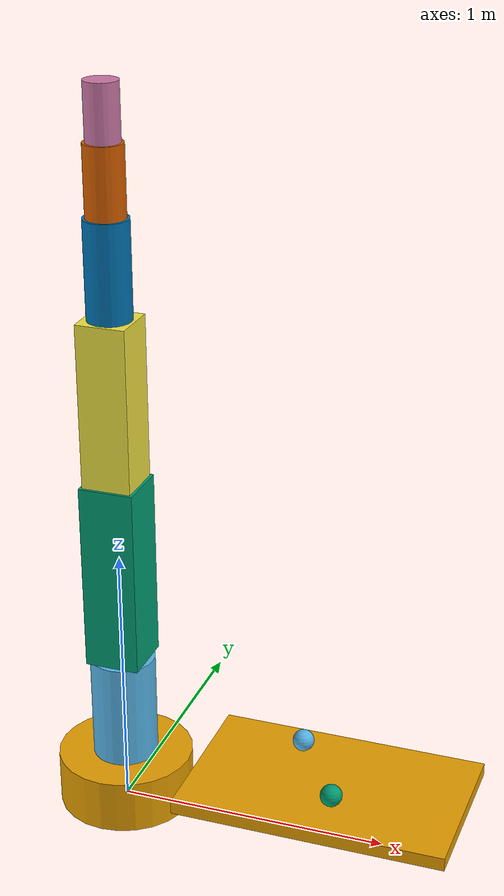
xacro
<?xml version="1.0"?>
<robot xmlns:xacro="http://www.ros.org/wiki/xacro" name="rs10n">

  <!-- BASE LINK                 -->
  <link name="base_link">
    <visual>
      <geometry>
        <cylinder radius="0.25" length="0.20"/>
      </geometry>
      <origin xyz="0 0 0.10" rpy="0 0 0"/>
    </visual>
  </link>

  <!-- LINK 1                    -->
  <link name="link_1">
    <visual>
      <geometry>
        <cylinder radius="0.12" length="0.40"/>
      </geometry>
      <origin xyz="0 0 0.20" rpy="0 0 0"/>
    </visual>
  </link>

  <joint name="joint_1" type="revolute">
    <parent link="base_link"/>
    <child link="link_1"/>
    <origin xyz="0 0 0.20" rpy="0 0 0"/>
    <axis xyz="0 0 1"/>
    <limit lower="-3.1416" upper="3.1416" effort="100" velocity="4.36"/>
  </joint>

  <!-- LINK 2                    -->
  <link name="link_2">
    <visual>
      <geometry>
        <box size="0.20 0.20 0.70"/>
      </geometry>
      <origin xyz="0 0 0.35" rpy="0 0 0"/>
    </visual>
  </link>

  <joint name="joint_2" type="revolute">
    <parent link="link_1"/>
    <child link="link_2"/>
    <origin xyz="0 0 0.40" rpy="0 0 0"/>
    <axis xyz="0 1 0"/>
    <limit lower="-1.8326" upper="2.5307" effort="100" velocity="4.36"/>
  </joint>

  <!-- LINK 3                    -->
  <link name="link_3">
    <visual>
      <geometry>
        <box size="0.18 0.18 0.60"/>
      </geometry>
      <origin xyz="0 0 0.30" rpy="0 0 0"/>
    </visual>
  </link>

  <joint name="joint_3" type="revolute">
    <parent link="link_2"/>
    <child link="link_3"/>
    <origin xyz="0 0 0.70" rpy="0 0 0"/>
    <axis xyz="0 1 0"/>
    <limit lower="-2.8449" upper="2.6180" effort="100" velocity="3.75"/>
  </joint>

  <!-- LINK 4                    -->
  <link name="link_4">
    <visual>
      <geometry>
        <cylinder radius="0.08" length="0.35"/>
      </geometry>
      <origin xyz="0 0 0.175" rpy="0 0 0"/>
    </visual>
  </link>

  <joint name="joint_4" type="revolute">
    <parent link="link_3"/>
    <child link="link_4"/>
    <origin xyz="0 0 0.60" rpy="0 0 0"/>
    <axis xyz="0 0 1"/>
    <limit lower="-4.7124" upper="4.7124" effort="100" velocity="6.37"/>
  </joint>

  <!-- LINK 5                    -->
  <link name="link_5">
    <visual>
      <geometry>
        <cylinder radius="0.07" length="0.25"/>
      </geometry>
      <origin xyz="0 0 0.125" rpy="0 0 0"/>
    </visual>
  </link>

  <joint name="joint_5" type="revolute">
    <parent link="link_4"/>
    <child link="link_5"/>
    <origin xyz="0 0 0.35" rpy="0 0 0"/>
    <axis xyz="0 1 0"/>
    <limit lower="-2.5307" upper="2.5307" effort="100" velocity="6.63"/>
  </joint>

  <!-- LINK 6                    -->
  <link name="link_6">
    <visual>
      <geometry>
        <cylinder radius="0.06" length="0.20"/>
      </geometry>
      <origin xyz="0 0 0.10" rpy="0 0 0"/>
    </visual>
  </link>

  <joint name="joint_6" type="revolute">
    <parent link="link_5"/>
    <child link="link_6"/>
    <origin xyz="0 0 0.25" rpy="0 0 0"/>
    <axis xyz="0 0 1"/>
    <limit lower="-6.2832" upper="6.2832" effort="100" velocity="12.21"/>
  </joint>

  <!-- TOOL0 FRAME               -->
  <!-- This is not a gripper. It is only the robot wrist reference point. -->
  <link name="tool0"/>

  <joint name="tool0_fixed" type="fixed">
    <parent link="link_6"/>
    <child link="tool0"/>
    <origin xyz="0 0 0.20" rpy="0 0 0"/>
  </joint>

  <!-- SIMPLE PROCESS TABLE      -->
  <link name="process_table">
    <visual>
      <geometry>
        <box size="1.0 0.6 0.05"/>
      </geometry>
      <origin xyz="0.8 0 0.2" rpy="0 0 0"/>
    </visual>
  </link>

  <joint name="process_table_fixed" type="fixed">
    <parent link="base_link"/>
    <child link="process_table"/>
    <origin xyz="0 0 0" rpy="0 0 0"/>
  </joint>

  <!-- PROCESS POINT 1           -->
  <link name="process_point_1">
    <visual>
      <geometry>
        <sphere radius="0.04"/>
      </geometry>
      <origin xyz="0.65 0.15 0.28" rpy="0 0 0"/>
    </visual>
  </link>

  <joint name="process_point_1_fixed" type="fixed">
    <parent link="base_link"/>
    <child link="process_point_1"/>
    <origin xyz="0 0 0" rpy="0 0 0"/>
  </joint>

  <!-- PROCESS POINT 2           -->
  <link name="process_point_2">
    <visual>
      <geometry>
        <sphere radius="0.04"/>
      </geometry>
      <origin xyz="0.85 -0.15 0.28" rpy="0 0 0"/>
    </visual>
  </link>

  <joint name="process_point_2_fixed" type="fixed">
    <parent link="base_link"/>
    <child link="process_point_2"/>
    <origin xyz="0 0 0" rpy="0 0 0"/>
  </joint>

</robot>
